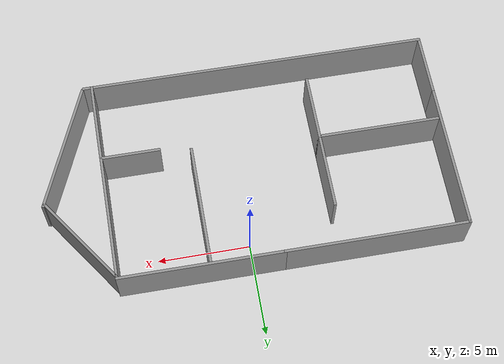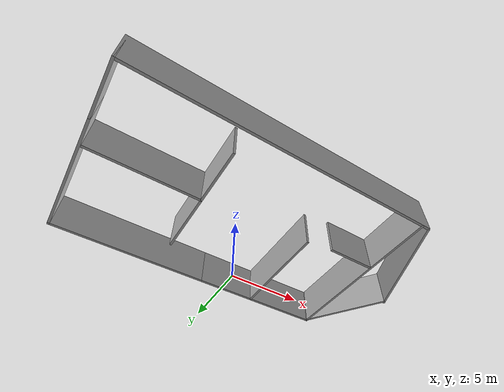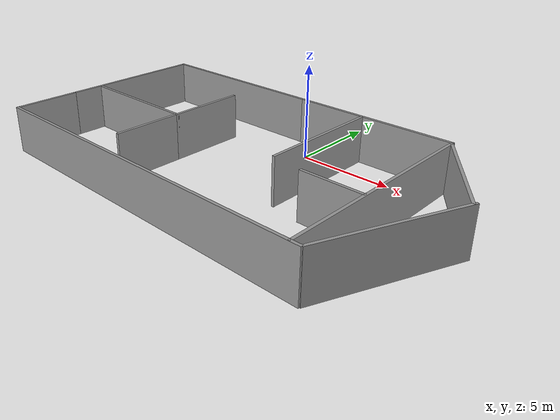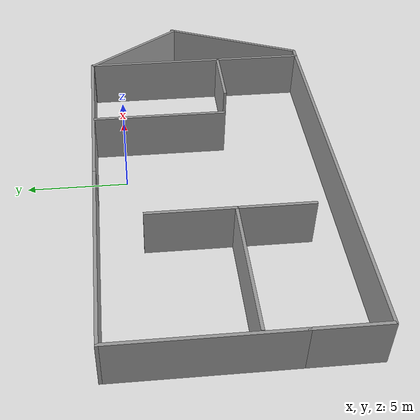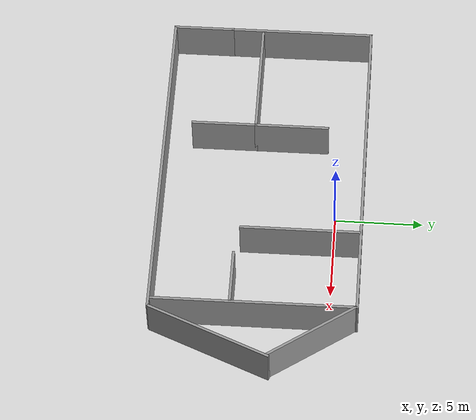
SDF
<?xml version='1.0'?>
<sdf version='1.6'>
  <model name='home'>
    <pose frame=''>-0.451912 -4.18476 0 0 -0 0</pose>
    <link name='Wall_0'>
      <collision name='Wall_0_Collision'>
        <geometry>
          <box>
            <size>8.95633 0.15 2.5</size>
          </box>
        </geometry>
        <pose frame=''>0 0 1.25 0 -0 0</pose>
      </collision>
      <visual name='Wall_0_Visual'>
        <pose frame=''>0 0 1.25 0 -0 0</pose>
        <geometry>
          <box>
            <size>8.95633 0.15 2.5</size>
          </box>
        </geometry>
        <material>
          <script>
            <uri>file://media/materials/scripts/gazebo.material</uri>
            <name>Gazebo/Grey</name>
          </script>
          <ambient>1 1 1 1</ambient>
        </material>
        <meta>
          <layer>0</layer>
        </meta>
      </visual>
      <pose frame=''>3.24808 5.725 0 0 -0 0</pose>
    </link>
    <link name='Wall_10'>
      <collision name='Wall_10_Collision'>
        <geometry>
          <box>
            <size>11.5 0.15 2.5</size>
          </box>
        </geometry>
        <pose frame=''>0 0 1.25 0 -0 0</pose>
      </collision>
      <visual name='Wall_10_Visual'>
        <pose frame=''>0 0 1.25 0 -0 0</pose>
        <geometry>
          <box>
            <size>11.5 0.15 2.5</size>
          </box>
        </geometry>
        <material>
          <script>
            <uri>file://media/materials/scripts/gazebo.material</uri>
            <name>Gazebo/Grey</name>
          </script>
          <ambient>1 1 1 1</ambient>
        </material>
        <meta>
          <layer>0</layer>
        </meta>
      </visual>
      <pose frame=''>7.65124 -0.031371 0 0 -0 -1.5708</pose>
    </link>
    <link name='Wall_12'>
      <collision name='Wall_12_Collision'>
        <geometry>
          <box>
            <size>6.75 0.15 2.5</size>
          </box>
        </geometry>
        <pose frame=''>0 0 1.25 0 -0 0</pose>
      </collision>
      <visual name='Wall_12_Visual'>
        <pose frame=''>0 0 1.25 0 -0 0</pose>
        <geometry>
          <box>
            <size>6.75 0.15 2.5</size>
          </box>
        </geometry>
        <material>
          <script>
            <uri>file://media/materials/scripts/gazebo.material</uri>
            <name>Gazebo/Grey</name>
          </script>
          <ambient>1 1 1 1</ambient>
        </material>
        <meta>
          <layer>0</layer>
        </meta>
      </visual>
      <pose frame=''>-7.53095 -0.583586 0 0 -0 0</pose>
    </link>
    <link name='Wall_13'>
      <collision name='Wall_13_Collision'>
        <geometry>
          <box>
            <size>3.75 0.15 2.5</size>
          </box>
        </geometry>
        <pose frame=''>0 0 1.25 0 -0 0</pose>
      </collision>
      <visual name='Wall_13_Visual'>
        <pose frame=''>0 0 1.25 0 -0 0</pose>
        <geometry>
          <box>
            <size>3.75 0.15 2.5</size>
          </box>
        </geometry>
        <material>
          <script>
            <uri>file://media/materials/scripts/gazebo.material</uri>
            <name>Gazebo/Grey</name>
          </script>
          <ambient>1 1 1 1</ambient>
        </material>
        <meta>
          <layer>0</layer>
        </meta>
      </visual>
      <pose frame=''>-4.23095 -2.38359 0 0 -0 -1.5708</pose>
    </link>
    <link name='Wall_15'>
      <collision name='Wall_15_Collision'>
        <geometry>
          <box>
            <size>4.25 0.15 2.5</size>
          </box>
        </geometry>
        <pose frame=''>0 0 1.25 0 -0 0</pose>
      </collision>
      <visual name='Wall_15_Visual'>
        <pose frame=''>0 0 1.25 0 -0 0</pose>
        <geometry>
          <box>
            <size>4.25 0.15 2.5</size>
          </box>
        </geometry>
        <material>
          <script>
            <uri>file://media/materials/scripts/gazebo.material</uri>
            <name>Gazebo/Grey</name>
          </script>
          <ambient>1 1 1 1</ambient>
        </material>
        <meta>
          <layer>0</layer>
        </meta>
      </visual>
      <pose frame=''>-4.23095 1.46641 0 0 -0 1.5708</pose>
    </link>
    <link name='Wall_17'>
      <collision name='Wall_17_Collision'>
        <geometry>
          <box>
            <size>6.75 0.15 2.5</size>
          </box>
        </geometry>
        <pose frame=''>0 0 1.25 0 -0 0</pose>
      </collision>
      <visual name='Wall_17_Visual'>
        <pose frame=''>0 0 1.25 0 -0 0</pose>
        <geometry>
          <box>
            <size>6.75 0.15 2.5</size>
          </box>
        </geometry>
        <material>
          <script>
            <uri>file://media/materials/scripts/gazebo.material</uri>
            <name>Gazebo/Grey</name>
          </script>
          <ambient>1 1 1 1</ambient>
        </material>
        <meta>
          <layer>0</layer>
        </meta>
      </visual>
      <pose frame=''>2.76671 2.33073 0 0 -0 -1.5708</pose>
    </link>
    <link name='Wall_19'>
      <collision name='Wall_19_Collision'>
        <geometry>
          <box>
            <size>3.25 0.15 2.5</size>
          </box>
        </geometry>
        <pose frame=''>0 0 1.25 0 -0 0</pose>
      </collision>
      <visual name='Wall_19_Visual'>
        <pose frame=''>0 0 1.25 0 -0 0</pose>
        <geometry>
          <box>
            <size>3.25 0.15 2.5</size>
          </box>
        </geometry>
        <material>
          <script>
            <uri>file://media/materials/scripts/gazebo.material</uri>
            <name>Gazebo/Grey</name>
          </script>
          <ambient>1 1 1 1</ambient>
        </material>
        <meta>
          <layer>0</layer>
        </meta>
      </visual>
      <pose frame=''>6.03949 -1.26039 0 0 -0 0</pose>
    </link>
    <link name='Wall_2'>
      <collision name='Wall_2_Collision'>
        <geometry>
          <box>
            <size>5.86018 0.15 2.5</size>
          </box>
        </geometry>
        <pose frame=''>0 0 1.25 0 -0 0</pose>
      </collision>
      <visual name='Wall_2_Visual'>
        <pose frame=''>0 0 1.25 0 -0 0</pose>
        <geometry>
          <box>
            <size>5.86018 0.15 2.5</size>
          </box>
        </geometry>
        <material>
          <script>
            <uri>file://media/materials/scripts/gazebo.material</uri>
            <name>Gazebo/Grey</name>
          </script>
          <ambient>1 1 1 1</ambient>
        </material>
        <meta>
          <layer>0</layer>
        </meta>
      </visual>
      <pose frame=''>9.2759 3.29586 0 0 -0 2.17613</pose>
    </link>
    <link name='Wall_4'>
      <collision name='Wall_4_Collision'>
        <geometry>
          <box>
            <size>10 0.15 2.5</size>
          </box>
        </geometry>
        <pose frame=''>0 0 1.25 0 -0 0</pose>
      </collision>
      <visual name='Wall_4_Visual'>
        <pose frame=''>0 0 1.25 0 -0 0</pose>
        <geometry>
          <box>
            <size>10 0.15 2.5</size>
          </box>
        </geometry>
        <material>
          <script>
            <uri>file://media/materials/scripts/gazebo.material</uri>
            <name>Gazebo/Grey</name>
          </script>
          <ambient>1 1 1 1</ambient>
        </material>
        <meta>
          <layer>0</layer>
        </meta>
      </visual>
      <pose frame=''>-6.08009 5.725 0 0 -0 3.14159</pose>
    </link>
    <link name='Wall_5'>
      <collision name='Wall_5_Collision'>
        <geometry>
          <box>
            <size>8.25 0.15 2.5</size>
          </box>
        </geometry>
        <pose frame=''>0 0 1.25 0 -0 0</pose>
      </collision>
      <visual name='Wall_5_Visual'>
        <pose frame=''>0 0 1.25 0 -0 0</pose>
        <geometry>
          <box>
            <size>8.25 0.15 2.5</size>
          </box>
        </geometry>
        <material>
          <script>
            <uri>file://media/materials/scripts/gazebo.material</uri>
            <name>Gazebo/Grey</name>
          </script>
          <ambient>1 1 1 1</ambient>
        </material>
        <meta>
          <layer>0</layer>
        </meta>
      </visual>
      <pose frame=''>-11.0051 1.675 0 0 -0 -1.5708</pose>
    </link>
    <link name='Wall_6'>
      <collision name='Wall_6_Collision'>
        <geometry>
          <box>
            <size>3.5 0.15 2.5</size>
          </box>
        </geometry>
        <pose frame=''>0 0 1.25 0 -0 0</pose>
      </collision>
      <visual name='Wall_6_Visual'>
        <pose frame=''>0 0 1.25 0 -0 0</pose>
        <geometry>
          <box>
            <size>3.5 0.15 2.5</size>
          </box>
        </geometry>
        <material>
          <script>
            <uri>file://media/materials/scripts/gazebo.material</uri>
            <name>Gazebo/Grey</name>
          </script>
          <ambient>1 1 1 1</ambient>
        </material>
        <meta>
          <layer>0</layer>
        </meta>
      </visual>
      <pose frame=''>-11.0051 -4.05 0 0 -0 -1.5708</pose>
    </link>
    <link name='Wall_7'>
      <collision name='Wall_7_Collision'>
        <geometry>
          <box>
            <size>19.2607 0.15 2.5</size>
          </box>
        </geometry>
        <pose frame=''>0 0 1.25 0 -0 0</pose>
      </collision>
      <visual name='Wall_7_Visual'>
        <pose frame=''>0 0 1.25 0 -0 0</pose>
        <geometry>
          <box>
            <size>19.2607 0.15 2.5</size>
          </box>
        </geometry>
        <material>
          <script>
            <uri>file://media/materials/scripts/gazebo.material</uri>
            <name>Gazebo/Grey</name>
          </script>
          <ambient>1 1 1 1</ambient>
        </material>
        <meta>
          <layer>0</layer>
        </meta>
      </visual>
      <pose frame=''>-1.44973 -5.725 0 0 -0 0</pose>
    </link>
    <link name='Wall_8'>
      <collision name='Wall_8_Collision'>
        <geometry>
          <box>
            <size>7.38476 0.15 2.5</size>
          </box>
        </geometry>
        <pose frame=''>0 0 1.25 0 -0 0</pose>
      </collision>
      <visual name='Wall_8_Visual'>
        <pose frame=''>0 0 1.25 0 -0 0</pose>
        <geometry>
          <box>
            <size>7.38476 0.15 2.5</size>
          </box>
        </geometry>
        <material>
          <script>
            <uri>file://media/materials/scripts/gazebo.material</uri>
            <name>Gazebo/Grey</name>
          </script>
          <ambient>1 1 1 1</ambient>
        </material>
        <meta>
          <layer>0</layer>
        </meta>
      </visual>
      <pose frame=''>9.58447 -2.30709 0 0 -0 1.17416</pose>
    </link>
    <static>1</static>
  </model>
</sdf>
